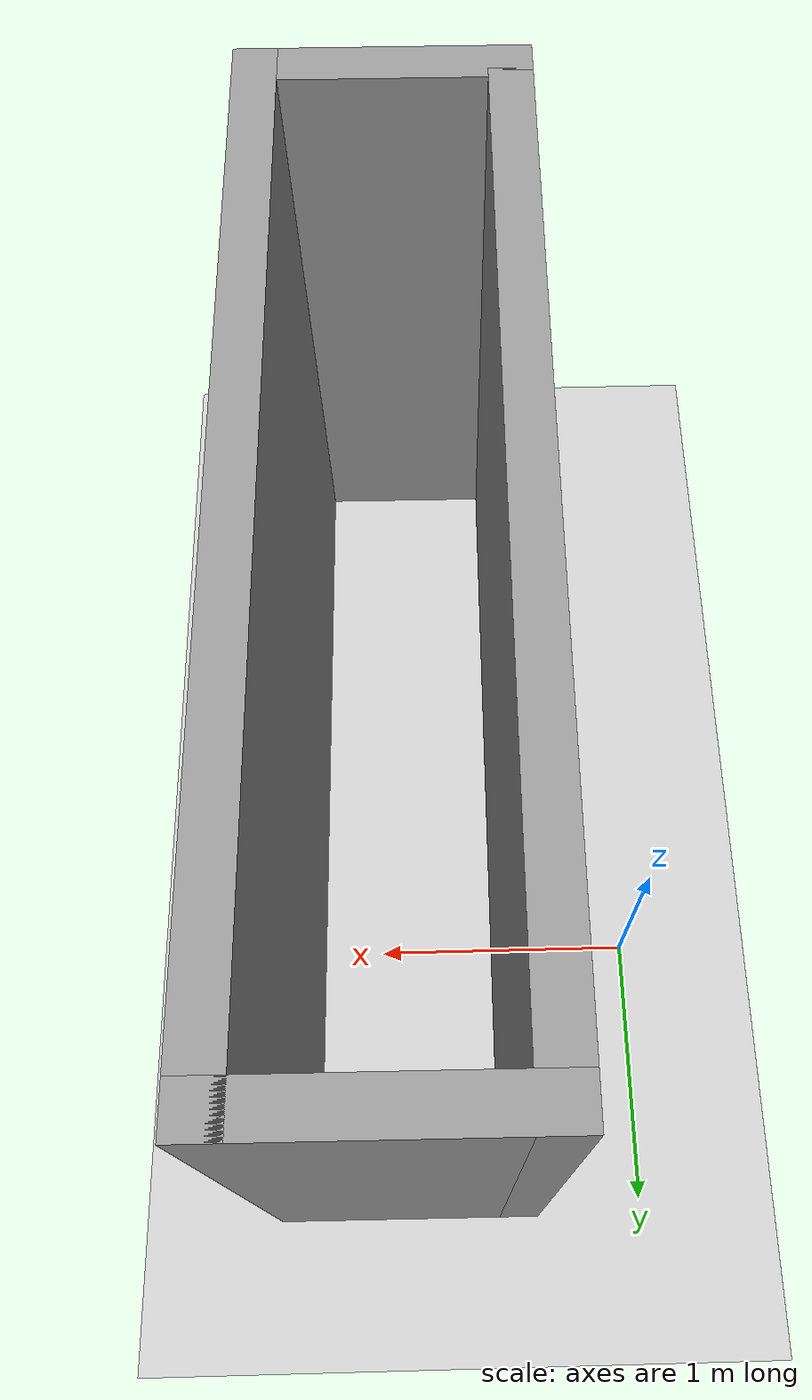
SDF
<sdf version="1.6">
 <world name="default">
  <light name="sun" type="directional">
   <pose>0 0 10 0 -0 0</pose>
   <diffuse>0.8 0.8 0.8 1</diffuse>
   <specular>0.2 0.2 0.2 1</specular>
   <attenuation>
    <range>1000</range>
    <constant>0.9</constant>
    <linear>0.01</linear>
    <quadratic>0.001</quadratic>
   </attenuation>
   <direction>-0.5 0.1 -0.9</direction>
  </light>
  <model name="ground_plane">
   <static>1</static>
   <link name="link">
    <collision name="collision">
     <geometry><plane><normal>0 0 1</normal><size>100 100</size></plane></geometry>
     <surface>
      <contact><collide_bitmask>65535</collide_bitmask></contact>
      <friction><ode><mu>100</mu><mu2>50</mu2></ode></friction>
     </surface>
    </collision>
    <visual name="visual">
     <cast_shadows>0</cast_shadows>
     <geometry><plane><normal>0 0 1</normal><size>100 100</size></plane></geometry>
     <material>
      <script><uri>file://media/materials/scripts/gazebo.material</uri><name>Gazebo/Grey</name></script>
     </material>
    </visual>
   </link>
  </model>
  <physics name="default_physics" default="0" type="ode">
   <real_time_update_rate>1000</real_time_update_rate>
   <max_step_size>0.001</max_step_size>
   <real_time_factor>1</real_time_factor>
   <ode>
    <solver>
     <type>quick</type>
     <iters>150</iters>
     <precon_iters>0</precon_iters>
     <sor>1.4</sor>
     <use_dynamic_moi_rescaling>1</use_dynamic_moi_rescaling>
    </solver>
    <constraints>
     <cfm>1e-05</cfm>
     <erp>0.2</erp>
     <contact_max_correcting_vel>2000</contact_max_correcting_vel>
     <contact_surface_layer>0.01</contact_surface_layer>
    </constraints>
   </ode>
  </physics>
  <scene><ambient>0.4 0.4 0.4 1</ambient><background>0.7 0.7 0.7 1</background><shadows>1</shadows></scene>
  <gravity>0 0 -9.8</gravity>
  <magnetic_field>6e-06 2.3e-05 -4.2e-05</magnetic_field>
  <atmosphere type="adiabatic"/>
  <audio><device>default</device></audio>
  <spherical_coordinates>
   <surface_model>EARTH_WGS84</surface_model>
   <latitude_deg>0</latitude_deg>
   <longitude_deg>0</longitude_deg>
   <elevation>0</elevation>
   <heading_deg>0</heading_deg>
  </spherical_coordinates>
  <model name="wall1">
   <pose>0.893041 -0.694819 0 0 0 -1.57514</pose>
   <link name="Wall_5">
    <collision name="Wall_5_Collision">
     <geometry><box><size>1 0.15 2.5</size></box></geometry>
     <pose>0 0 1.25 0 -0 0</pose>
    </collision>
    <visual name="Wall_5_Visual">
     <pose>0 0 1.25 0 -0 0</pose>
     <geometry><box><size>1 0.15 2.5</size></box></geometry>
     <material>
      <script><uri>file://media/materials/scripts/gazebo.material</uri><name>Gazebo/Grey</name></script>
      <ambient>1 1 1 1</ambient>
     </material>
     <meta><layer>0</layer></meta>
    </visual>
    <pose>-1.675 0 0 0 -0 1.5708</pose>
   </link>
   <link name="Wall_6">
    <collision name="Wall_6_Collision">
     <geometry><box><size>3.5 0.15 2.5</size></box></geometry>
     <pose>0 0 1.25 0 -0 0</pose>
    </collision>
    <visual name="Wall_6_Visual">
     <pose>0 0 1.25 0 -0 0</pose>
     <geometry><box><size>3.5 0.15 2.5</size></box></geometry>
     <material>
      <script><uri>file://media/materials/scripts/gazebo.material</uri><name>Gazebo/Grey</name></script>
      <ambient>1 1 1 1</ambient>
     </material>
     <meta><layer>0</layer></meta>
    </visual>
    <pose>0 0.425 0 0 -0 0</pose>
   </link>
   <link name="Wall_7">
    <collision name="Wall_7_Collision">
     <geometry><box><size>1 0.15 2.5</size></box></geometry>
     <pose>0 0 1.25 0 -0 0</pose>
    </collision>
    <visual name="Wall_7_Visual">
     <pose>0 0 1.25 0 -0 0</pose>
     <geometry><box><size>1 0.15 2.5</size></box></geometry>
     <material>
      <script><uri>file://media/materials/scripts/gazebo.material</uri><name>Gazebo/Grey</name></script>
      <ambient>1 1 1 1</ambient>
     </material>
     <meta><layer>0</layer></meta>
    </visual>
    <pose>1.675 0 0 0 -0 -1.5708</pose>
   </link>
   <link name="Wall_8">
    <collision name="Wall_8_Collision">
     <geometry><box><size>3.5 0.15 2.5</size></box></geometry>
     <pose>0 0 1.25 0 -0 0</pose>
    </collision>
    <visual name="Wall_8_Visual">
     <pose>0 0 1.25 0 -0 0</pose>
     <geometry><box><size>3.5 0.15 2.5</size></box></geometry>
     <material>
      <script><uri>file://media/materials/scripts/gazebo.material</uri><name>Gazebo/Grey</name></script>
      <ambient>1 1 1 1</ambient>
     </material>
     <meta><layer>0</layer></meta>
    </visual>
    <pose>0 -0.425 0 0 -0 3.14159</pose>
   </link>
   <static>1</static>
  </model>
 </world>
</sdf>
